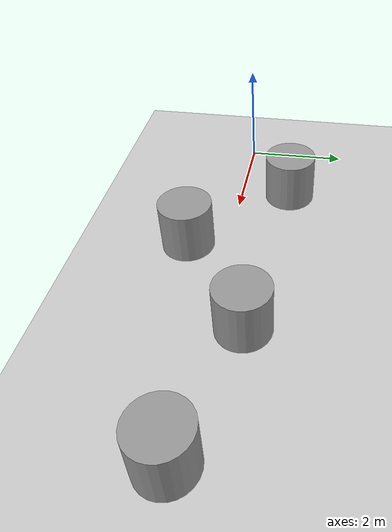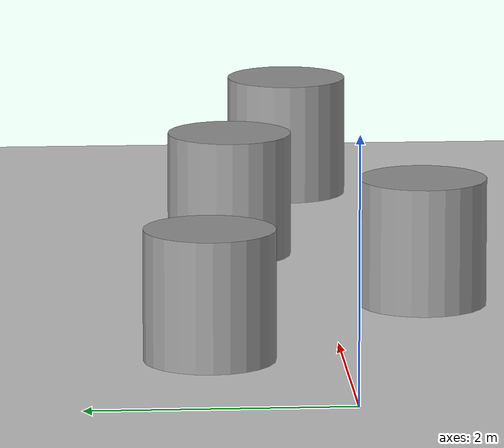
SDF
<sdf version="1.7">
 <world name="default">
  <model name="ground_plane">
   <static>1</static>
   <link name="link">
    <collision name="collision">
     <geometry><plane><normal>0 0 1</normal><size>100 100</size></plane></geometry>
     <surface><friction><ode><mu>0.7</mu><mu2>0.7</mu2></ode></friction></surface>
    </collision>
    <visual name="visual">
     <cast_shadows>0</cast_shadows>
     <geometry><plane><normal>0 0 1</normal><size>100 100</size></plane></geometry>
     <material>
      <script><uri>file://media/materials/scripts/gazebo.material</uri><name>Gazebo/Grey</name></script>
     </material>
    </visual>
   </link>
  </model>
  <light name="sun" type="directional">
   <pose>0 0 10 0 -0 0</pose>
   <diffuse>0.8 0.8 0.8 1</diffuse>
   <specular>0.1 0.1 0.1 1</specular>
   <attenuation>
    <range>1000</range>
    <constant>0.9</constant>
    <linear>0.01</linear>
    <quadratic>0.001</quadratic>
   </attenuation>
   <direction>-0.5 0.5 -1</direction>
   <spot><inner_angle>0</inner_angle><outer_angle>0</outer_angle><falloff>0</falloff></spot>
  </light>
  <gravity>0 0 -9.81</gravity>
  <magnetic_field>6e-06 2.3e-05 -4.2e-05</magnetic_field>
  <atmosphere type="adiabatic"/>
  <physics name="default_physics" default="0" type="ode">
   <max_step_size>0.001</max_step_size>
   <real_time_factor>1</real_time_factor>
   <real_time_update_rate>1000</real_time_update_rate>
  </physics>
  <scene><ambient>0.4 0.4 0.4 1</ambient><background>0.7 0.7 0.7 1</background><shadows>1</shadows></scene>
  <spherical_coordinates>
   <surface_model>EARTH_WGS84</surface_model>
   <latitude_deg>0</latitude_deg>
   <longitude_deg>0</longitude_deg>
   <elevation>0</elevation>
   <heading_deg>0</heading_deg>
  </spherical_coordinates>
  <model name="unit_cylinder">
   <link name="link">
    <inertial>
     <mass>1</mass>
     <inertia><ixx>0.145833</ixx><ixy>0</ixy><ixz>0</ixz><iyy>0.145833</iyy><iyz>0</iyz><izz>0.125</izz></inertia>
    </inertial>
    <visual name="visual">
     <geometry><cylinder><radius>0.5</radius><length>1</length></cylinder></geometry>
     <material>
      <script><name>Gazebo/Grey</name><uri>file://media/materials/scripts/gazebo.material</uri></script>
      <shader type="pixel"><normal_map>__default__</normal_map></shader>
      <ambient>0.3 0.3 0.3 1</ambient>
      <diffuse>0.7 0.7 0.7 1</diffuse>
      <specular>0.01 0.01 0.01 1</specular>
      <emissive>1 0 0 1</emissive>
     </material>
    </visual>
    <collision name="collision">
     <geometry><cylinder><radius>0.5</radius><length>1</length></cylinder></geometry>
     <surface>
      <friction>
       <ode><mu>1</mu><mu2>1</mu2><fdir1>0 0 0</fdir1><slip1>0</slip1><slip2>0</slip2></ode>
       <torsional>
        <coefficient>1</coefficient>
        <patch_radius>0</patch_radius>
        <surface_radius>0</surface_radius>
        <use_patch_radius>1</use_patch_radius>
        <ode><slip>0</slip></ode>
       </torsional>
      </friction>
      <bounce><restitution_coefficient>0</restitution_coefficient><threshold>1e+06</threshold></bounce>
      <contact>
       <collide_without_contact>0</collide_without_contact>
       <collide_without_contact_bitmask>1</collide_without_contact_bitmask>
       <collide_bitmask>1</collide_bitmask>
       <ode>
        <soft_cfm>0</soft_cfm>
        <soft_erp>0.2</soft_erp>
        <kp>1e+13</kp>
        <kd>1</kd>
        <max_vel>0.01</max_vel>
        <min_depth>0</min_depth>
       </ode>
       <bullet>
        <split_impulse>1</split_impulse>
        <split_impulse_penetration_threshold>-0.01</split_impulse_penetration_threshold>
        <soft_cfm>0</soft_cfm>
        <soft_erp>0.2</soft_erp>
        <kp>1e+13</kp>
        <kd>1</kd>
       </bullet>
      </contact>
     </surface>
    </collision>
   </link>
   <static>0</static>
   <pose>1.53904 1 0.5 0 -0 0</pose>
  </model>
  <model name="unit_cylinder_clone">
   <link name="link">
    <inertial>
     <mass>1</mass>
     <inertia><ixx>0.145833</ixx><ixy>0</ixy><ixz>0</ixz><iyy>0.145833</iyy><iyz>0</iyz><izz>0.125</izz></inertia>
    </inertial>
    <visual name="visual">
     <geometry><cylinder><radius>0.5</radius><length>1</length></cylinder></geometry>
     <material>
      <script><name>Gazebo/Grey</name><uri>file://media/materials/scripts/gazebo.material</uri></script>
      <shader type="pixel"><normal_map>__default__</normal_map></shader>
      <ambient>0.3 0.3 0.3 1</ambient>
      <diffuse>0.7 0.7 0.7 1</diffuse>
      <specular>0.01 0.01 0.01 1</specular>
      <emissive>1 0 0 1</emissive>
     </material>
    </visual>
    <collision name="collision">
     <geometry><cylinder><radius>0.5</radius><length>1</length></cylinder></geometry>
     <surface>
      <friction>
       <ode><mu>1</mu><mu2>1</mu2><fdir1>0 0 0</fdir1><slip1>0</slip1><slip2>0</slip2></ode>
       <torsional>
        <coefficient>1</coefficient>
        <patch_radius>0</patch_radius>
        <surface_radius>0</surface_radius>
        <use_patch_radius>1</use_patch_radius>
        <ode><slip>0</slip></ode>
       </torsional>
      </friction>
      <bounce><restitution_coefficient>0</restitution_coefficient><threshold>1e+06</threshold></bounce>
      <contact>
       <collide_without_contact>0</collide_without_contact>
       <collide_without_contact_bitmask>1</collide_without_contact_bitmask>
       <collide_bitmask>1</collide_bitmask>
       <ode>
        <soft_cfm>0</soft_cfm>
        <soft_erp>0.2</soft_erp>
        <kp>1e+13</kp>
        <kd>1</kd>
        <max_vel>0.01</max_vel>
        <min_depth>0</min_depth>
       </ode>
       <bullet>
        <split_impulse>1</split_impulse>
        <split_impulse_penetration_threshold>-0.01</split_impulse_penetration_threshold>
        <soft_cfm>0</soft_cfm>
        <soft_erp>0.2</soft_erp>
        <kp>1e+13</kp>
        <kd>1</kd>
       </bullet>
      </contact>
     </surface>
    </collision>
   </link>
   <static>0</static>
   <pose>3.3205 -0.760443 0.5 0 -0 0</pose>
  </model>
  <model name="unit_cylinder_clone_clone">
   <link name="link">
    <inertial>
     <mass>1</mass>
     <inertia><ixx>0.145833</ixx><ixy>0</ixy><ixz>0</ixz><iyy>0.145833</iyy><iyz>0</iyz><izz>0.125</izz></inertia>
    </inertial>
    <visual name="visual">
     <geometry><cylinder><radius>0.5</radius><length>1</length></cylinder></geometry>
     <material>
      <script><name>Gazebo/Grey</name><uri>file://media/materials/scripts/gazebo.material</uri></script>
      <shader type="pixel"><normal_map>__default__</normal_map></shader>
      <ambient>0.3 0.3 0.3 1</ambient>
      <diffuse>0.7 0.7 0.7 1</diffuse>
      <specular>0.01 0.01 0.01 1</specular>
      <emissive>1 0 0 1</emissive>
     </material>
    </visual>
    <collision name="collision">
     <geometry><cylinder><radius>0.5</radius><length>1</length></cylinder></geometry>
     <surface>
      <friction>
       <ode><mu>1</mu><mu2>1</mu2><fdir1>0 0 0</fdir1><slip1>0</slip1><slip2>0</slip2></ode>
       <torsional>
        <coefficient>1</coefficient>
        <patch_radius>0</patch_radius>
        <surface_radius>0</surface_radius>
        <use_patch_radius>1</use_patch_radius>
        <ode><slip>0</slip></ode>
       </torsional>
      </friction>
      <bounce><restitution_coefficient>0</restitution_coefficient><threshold>1e+06</threshold></bounce>
      <contact>
       <collide_without_contact>0</collide_without_contact>
       <collide_without_contact_bitmask>1</collide_without_contact_bitmask>
       <collide_bitmask>1</collide_bitmask>
       <ode>
        <soft_cfm>0</soft_cfm>
        <soft_erp>0.2</soft_erp>
        <kp>1e+13</kp>
        <kd>1</kd>
        <max_vel>0.01</max_vel>
        <min_depth>0</min_depth>
       </ode>
       <bullet>
        <split_impulse>1</split_impulse>
        <split_impulse_penetration_threshold>-0.01</split_impulse_penetration_threshold>
        <soft_cfm>0</soft_cfm>
        <soft_erp>0.2</soft_erp>
        <kp>1e+13</kp>
        <kd>1</kd>
       </bullet>
      </contact>
     </surface>
    </collision>
   </link>
   <static>0</static>
   <pose>5.24372 0.640568 0.5 0 -0 0</pose>
  </model>
  <model name="unit_cylinder_clone_clone_clone">
   <link name="link">
    <inertial>
     <mass>1</mass>
     <inertia><ixx>0.145833</ixx><ixy>0</ixy><ixz>0</ixz><iyy>0.145833</iyy><iyz>0</iyz><izz>0.125</izz></inertia>
    </inertial>
    <visual name="visual">
     <geometry><cylinder><radius>0.5</radius><length>1</length></cylinder></geometry>
     <material>
      <script><name>Gazebo/Grey</name><uri>file://media/materials/scripts/gazebo.material</uri></script>
      <shader type="pixel"><normal_map>__default__</normal_map></shader>
      <ambient>0.3 0.3 0.3 1</ambient>
      <diffuse>0.7 0.7 0.7 1</diffuse>
      <specular>0.01 0.01 0.01 1</specular>
      <emissive>1 0 0 1</emissive>
     </material>
    </visual>
    <collision name="collision">
     <geometry><cylinder><radius>0.5</radius><length>1</length></cylinder></geometry>
     <surface>
      <friction>
       <ode><mu>1</mu><mu2>1</mu2><fdir1>0 0 0</fdir1><slip1>0</slip1><slip2>0</slip2></ode>
       <torsional>
        <coefficient>1</coefficient>
        <patch_radius>0</patch_radius>
        <surface_radius>0</surface_radius>
        <use_patch_radius>1</use_patch_radius>
        <ode><slip>0</slip></ode>
       </torsional>
      </friction>
      <bounce><restitution_coefficient>0</restitution_coefficient><threshold>1e+06</threshold></bounce>
      <contact>
       <collide_without_contact>0</collide_without_contact>
       <collide_without_contact_bitmask>1</collide_without_contact_bitmask>
       <collide_bitmask>1</collide_bitmask>
       <ode>
        <soft_cfm>0</soft_cfm>
        <soft_erp>0.2</soft_erp>
        <kp>1e+13</kp>
        <kd>1</kd>
        <max_vel>0.01</max_vel>
        <min_depth>0</min_depth>
       </ode>
       <bullet>
        <split_impulse>1</split_impulse>
        <split_impulse_penetration_threshold>-0.01</split_impulse_penetration_threshold>
        <soft_cfm>0</soft_cfm>
        <soft_erp>0.2</soft_erp>
        <kp>1e+13</kp>
        <kd>1</kd>
       </bullet>
      </contact>
     </surface>
    </collision>
   </link>
   <static>0</static>
   <pose>7.68168 0.014052 0.5 0 -0 0</pose>
  </model>
 </world>
</sdf>
